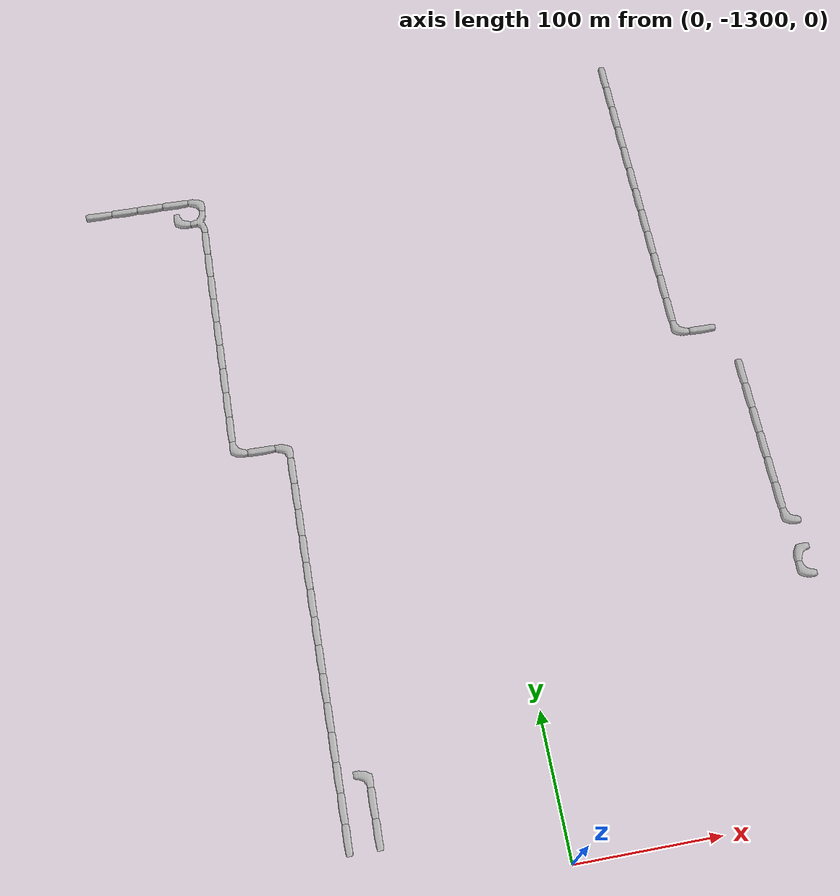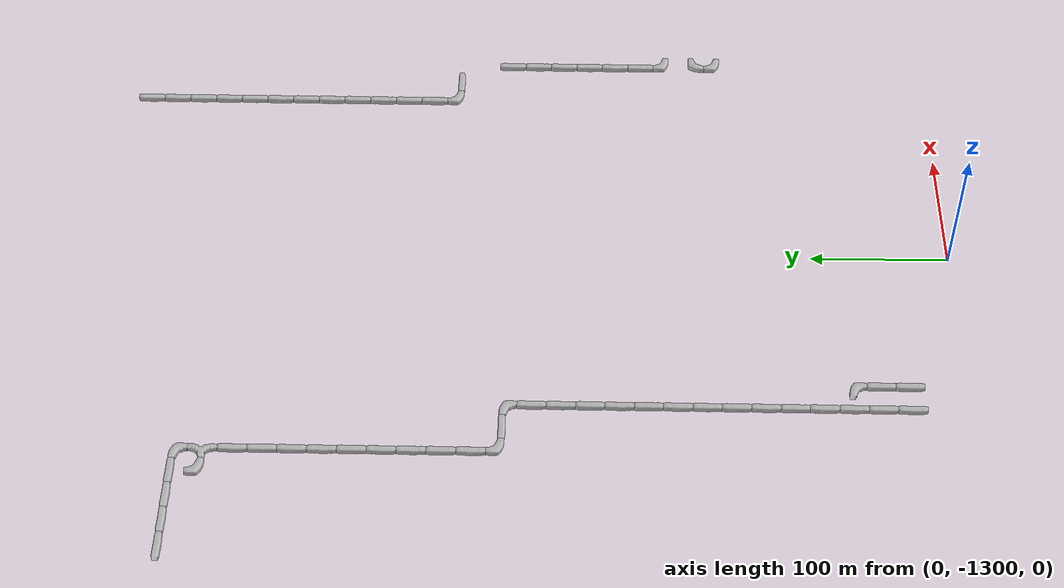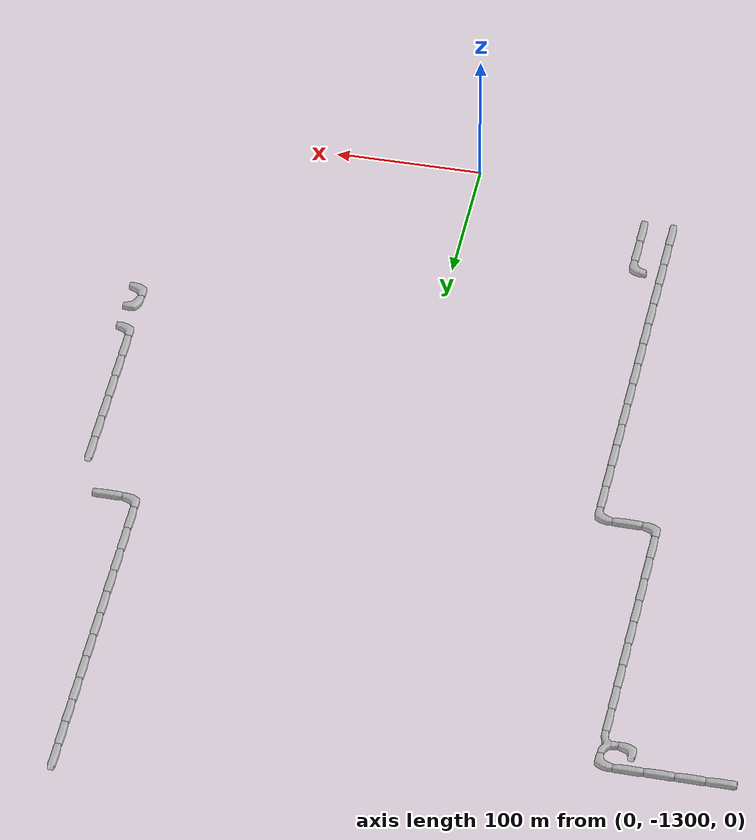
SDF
<sdf version="1.6">
 <world name="cave_32000_16">
  <include>
   <static>true</static>
   <name>cave_8_-35</name>
   <pose>160 -700 0 0 0 0.0</pose>
   <uri>model://cave_straight_20m</uri>
  </include>
  <include>
   <static>true</static>
   <name>cave_8_-36</name>
   <pose>160 -720 0 0 0 0.0</pose>
   <uri>model://cave_straight_20m</uri>
  </include>
  <include>
   <static>true</static>
   <name>cave_8_-37</name>
   <pose>160 -740 0 0 0 0.0</pose>
   <uri>model://cave_straight_20m</uri>
  </include>
  <include>
   <static>true</static>
   <name>cave_8_-38</name>
   <pose>160 -760 0 0 0 0.0</pose>
   <uri>model://cave_straight_20m</uri>
  </include>
  <include>
   <static>true</static>
   <name>cave_8_-39</name>
   <pose>160 -780 0 0 0 0.0</pose>
   <uri>model://cave_straight_20m</uri>
  </include>
  <include>
   <static>true</static>
   <name>cave_8_-40</name>
   <pose>160 -800 0 0 0 0.0</pose>
   <uri>model://cave_straight_20m</uri>
  </include>
  <include>
   <static>true</static>
   <name>cave_8_-41</name>
   <pose>160 -820 0 0 0 0.0</pose>
   <uri>model://cave_straight_20m</uri>
  </include>
  <include>
   <static>true</static>
   <name>cave_8_-42</name>
   <pose>160 -840 0 0 0 0.0</pose>
   <uri>model://cave_straight_20m</uri>
  </include>
  <include>
   <static>true</static>
   <name>cave_8_-43</name>
   <pose>160 -860 0 0 0 0.0</pose>
   <uri>model://cave_straight_20m</uri>
  </include>
  <include>
   <static>true</static>
   <name>cave_8_-44</name>
   <pose>160 -880 0 0 0 0.0</pose>
   <uri>model://cave_straight_20m</uri>
  </include>
  <include>
   <static>true</static>
   <name>cave_8_-45</name>
   <pose>160 -900 0 0 0 0.0</pose>
   <uri>model://cave_straight_20m</uri>
  </include>
  <include>
   <static>true</static>
   <name>cave_8_-46</name>
   <pose>160 -920 0 0 0 0.0</pose>
   <uri>model://cave_straight_20m</uri>
  </include>
  <include>
   <static>true</static>
   <name>cave_8_-47</name>
   <pose>160 -940 0 0 0 0.0</pose>
   <uri>model://cave_L_20m</uri>
  </include>
  <include>
   <static>true</static>
   <name>cave_9_-47</name>
   <pose>180 -940 0 0 0 1.5707963267948966</pose>
   <uri>model://cave_straight_20m</uri>
  </include>
  <include>
   <static>true</static>
   <name>cave_10_-56</name>
   <pose>200 -1120 0 0 0 -1.5707963267948966</pose>
   <uri>model://cave_L_20m</uri>
  </include>
  <include>
   <static>true</static>
   <name>cave_10_-57</name>
   <pose>200 -1140 0 0 0 0.0</pose>
   <uri>model://cave_L_20m</uri>
  </include>
  <include>
   <static>true</static>
   <name>cave_10_-55</name>
   <pose>200 -1100 0 0 0 0.0</pose>
   <uri>model://cave_L_20m</uri>
  </include>
  <include>
   <static>true</static>
   <name>cave_10_-54</name>
   <pose>200 -1080 0 0 0 0.0</pose>
   <uri>model://cave_straight_20m</uri>
  </include>
  <include>
   <static>true</static>
   <name>cave_10_-53</name>
   <pose>200 -1060 0 0 0 0.0</pose>
   <uri>model://cave_straight_20m</uri>
  </include>
  <include>
   <static>true</static>
   <name>cave_10_-52</name>
   <pose>200 -1040 0 0 0 0.0</pose>
   <uri>model://cave_straight_20m</uri>
  </include>
  <include>
   <static>true</static>
   <name>cave_10_-51</name>
   <pose>200 -1020 0 0 0 0.0</pose>
   <uri>model://cave_straight_20m</uri>
  </include>
  <include>
   <static>true</static>
   <name>cave_10_-50</name>
   <pose>200 -1000 0 0 0 0.0</pose>
   <uri>model://cave_straight_20m</uri>
  </include>
  <include>
   <static>true</static>
   <name>cave_10_-49</name>
   <pose>200 -980 0 0 0 0.0</pose>
   <uri>model://cave_straight_20m</uri>
  </include>
  <include>
   <static>true</static>
   <name>cave_-13_-38</name>
   <pose>-260 -760 0 0 0 1.5707963267948966</pose>
   <uri>model://cave_straight_20m</uri>
  </include>
  <include>
   <static>true</static>
   <name>cave_-12_-38</name>
   <pose>-240 -760 0 0 0 1.5707963267948966</pose>
   <uri>model://cave_straight_20m</uri>
  </include>
  <include>
   <static>true</static>
   <name>cave_-11_-38</name>
   <pose>-220 -760 0 0 0 1.5707963267948966</pose>
   <uri>model://cave_straight_20m</uri>
  </include>
  <include>
   <static>true</static>
   <name>cave_-10_-38</name>
   <pose>-200 -760 0 0 0 1.5707963267948966</pose>
   <uri>model://cave_straight_20m</uri>
  </include>
  <include>
   <static>true</static>
   <name>cave_-9_-38</name>
   <pose>-180 -760 0 0 0 3.141592653589793</pose>
   <uri>model://cave_L_20m</uri>
  </include>
  <include>
   <static>true</static>
   <name>cave_-9_-39</name>
   <pose>-180 -780 0 0 0 1.5707963267948966</pose>
   <uri>model://cave_3way_20m</uri>
  </include>
  <include>
   <static>true</static>
   <name>cave_-9_-40</name>
   <pose>-180 -800 0 0 0 0.0</pose>
   <uri>model://cave_straight_20m</uri>
  </include>
  <include>
   <static>true</static>
   <name>cave_-9_-41</name>
   <pose>-180 -820 0 0 0 0.0</pose>
   <uri>model://cave_straight_20m</uri>
  </include>
  <include>
   <static>true</static>
   <name>cave_-9_-42</name>
   <pose>-180 -840 0 0 0 0.0</pose>
   <uri>model://cave_straight_20m</uri>
  </include>
  <include>
   <static>true</static>
   <name>cave_-9_-43</name>
   <pose>-180 -860 0 0 0 0.0</pose>
   <uri>model://cave_straight_20m</uri>
  </include>
  <include>
   <static>true</static>
   <name>cave_-9_-44</name>
   <pose>-180 -880 0 0 0 0.0</pose>
   <uri>model://cave_straight_20m</uri>
  </include>
  <include>
   <static>true</static>
   <name>cave_-9_-45</name>
   <pose>-180 -900 0 0 0 0.0</pose>
   <uri>model://cave_straight_20m</uri>
  </include>
  <include>
   <static>true</static>
   <name>cave_-9_-46</name>
   <pose>-180 -920 0 0 0 0.0</pose>
   <uri>model://cave_straight_20m</uri>
  </include>
  <include>
   <static>true</static>
   <name>cave_-9_-47</name>
   <pose>-180 -940 0 0 0 0.0</pose>
   <uri>model://cave_straight_20m</uri>
  </include>
  <include>
   <static>true</static>
   <name>cave_-9_-48</name>
   <pose>-180 -960 0 0 0 0.0</pose>
   <uri>model://cave_straight_20m</uri>
  </include>
  <include>
   <static>true</static>
   <name>cave_-9_-49</name>
   <pose>-180 -980 0 0 0 0.0</pose>
   <uri>model://cave_L_20m</uri>
  </include>
  <include>
   <static>true</static>
   <name>cave_-8_-49</name>
   <pose>-160 -980 0 0 0 1.5707963267948966</pose>
   <uri>model://cave_straight_20m</uri>
  </include>
  <include>
   <static>true</static>
   <name>cave_-7_-49</name>
   <pose>-140 -980 0 0 0 3.141592653589793</pose>
   <uri>model://cave_L_20m</uri>
  </include>
  <include>
   <static>true</static>
   <name>cave_-7_-50</name>
   <pose>-140 -1000 0 0 0 0.0</pose>
   <uri>model://cave_straight_20m</uri>
  </include>
  <include>
   <static>true</static>
   <name>cave_-7_-51</name>
   <pose>-140 -1020 0 0 0 0.0</pose>
   <uri>model://cave_straight_20m</uri>
  </include>
  <include>
   <static>true</static>
   <name>cave_-7_-52</name>
   <pose>-140 -1040 0 0 0 0.0</pose>
   <uri>model://cave_straight_20m</uri>
  </include>
  <include>
   <static>true</static>
   <name>cave_-7_-53</name>
   <pose>-140 -1060 0 0 0 0.0</pose>
   <uri>model://cave_straight_20m</uri>
  </include>
  <include>
   <static>true</static>
   <name>cave_-7_-54</name>
   <pose>-140 -1080 0 0 0 0.0</pose>
   <uri>model://cave_straight_20m</uri>
  </include>
  <include>
   <static>true</static>
   <name>cave_-7_-55</name>
   <pose>-140 -1100 0 0 0 0.0</pose>
   <uri>model://cave_straight_20m</uri>
  </include>
  <include>
   <static>true</static>
   <name>cave_-7_-56</name>
   <pose>-140 -1120 0 0 0 0.0</pose>
   <uri>model://cave_straight_20m</uri>
  </include>
  <include>
   <static>true</static>
   <name>cave_-7_-57</name>
   <pose>-140 -1140 0 0 0 0.0</pose>
   <uri>model://cave_straight_20m</uri>
  </include>
  <include>
   <static>true</static>
   <name>cave_-7_-58</name>
   <pose>-140 -1160 0 0 0 0.0</pose>
   <uri>model://cave_straight_20m</uri>
  </include>
  <include>
   <static>true</static>
   <name>cave_-7_-59</name>
   <pose>-140 -1180 0 0 0 0.0</pose>
   <uri>model://cave_straight_20m</uri>
  </include>
  <include>
   <static>true</static>
   <name>cave_-7_-60</name>
   <pose>-140 -1200 0 0 0 0.0</pose>
   <uri>model://cave_straight_20m</uri>
  </include>
  <include>
   <static>true</static>
   <name>cave_-7_-61</name>
   <pose>-140 -1220 0 0 0 0.0</pose>
   <uri>model://cave_straight_20m</uri>
  </include>
  <include>
   <static>true</static>
   <name>cave_-7_-62</name>
   <pose>-140 -1240 0 0 0 0.0</pose>
   <uri>model://cave_straight_20m</uri>
  </include>
  <include>
   <static>true</static>
   <name>cave_-7_-63</name>
   <pose>-140 -1260 0 0 0 0.0</pose>
   <uri>model://cave_straight_20m</uri>
  </include>
  <include>
   <static>true</static>
   <name>cave_-6_-63</name>
   <pose>-120 -1260 0 0 0 0.0</pose>
   <uri>model://cave_straight_20m</uri>
  </include>
  <include>
   <static>true</static>
   <name>cave_-6_-62</name>
   <pose>-120 -1240 0 0 0 0.0</pose>
   <uri>model://cave_straight_20m</uri>
  </include>
  <include>
   <static>true</static>
   <name>cave_-6_-61</name>
   <pose>-120 -1220 0 0 0 3.141592653589793</pose>
   <uri>model://cave_L_20m</uri>
  </include>
  <include>
   <static>true</static>
   <name>cave_-10_-39</name>
   <pose>-200 -780 0 0 0 0.0</pose>
   <uri>model://cave_L_20m</uri>
  </include>
 </world>
</sdf>
